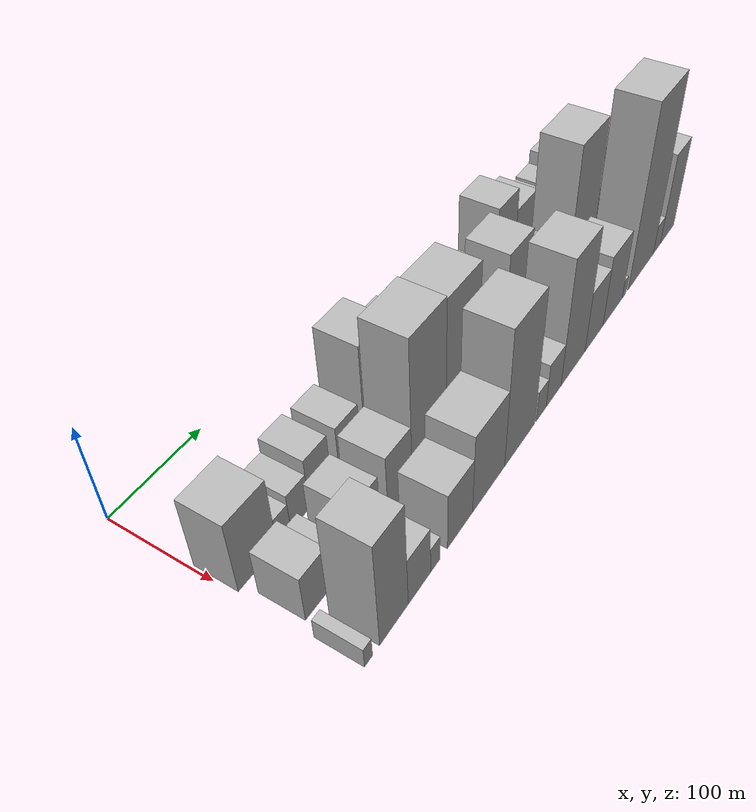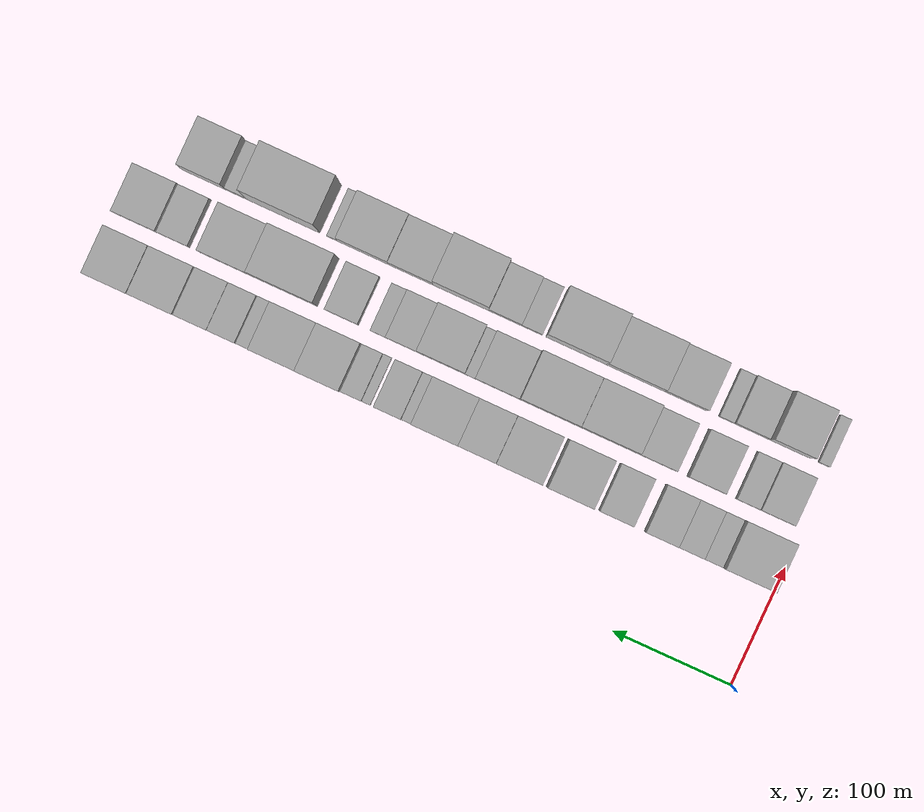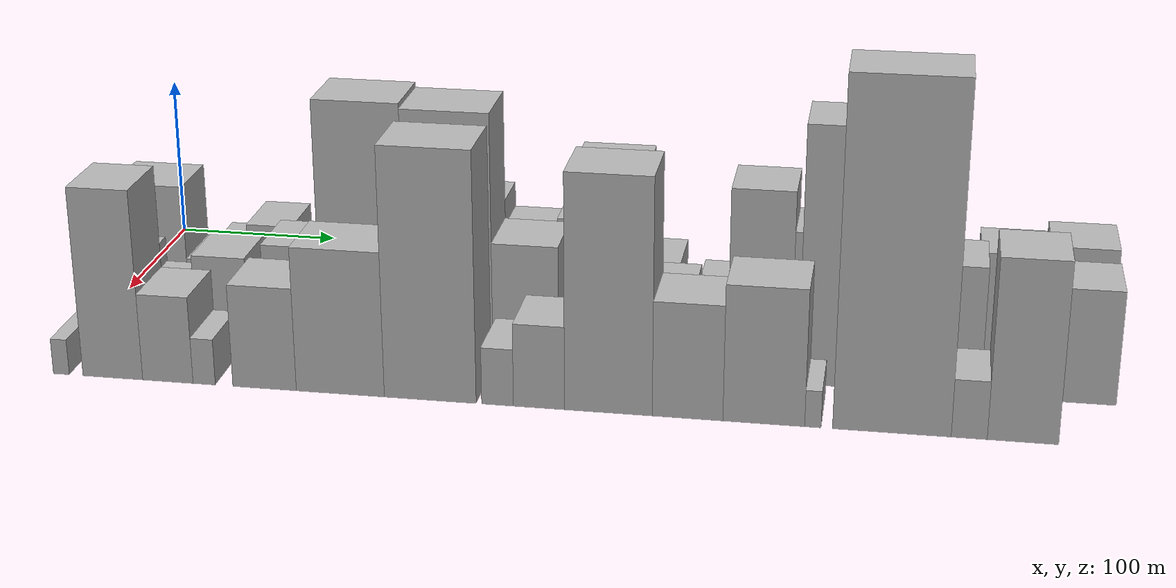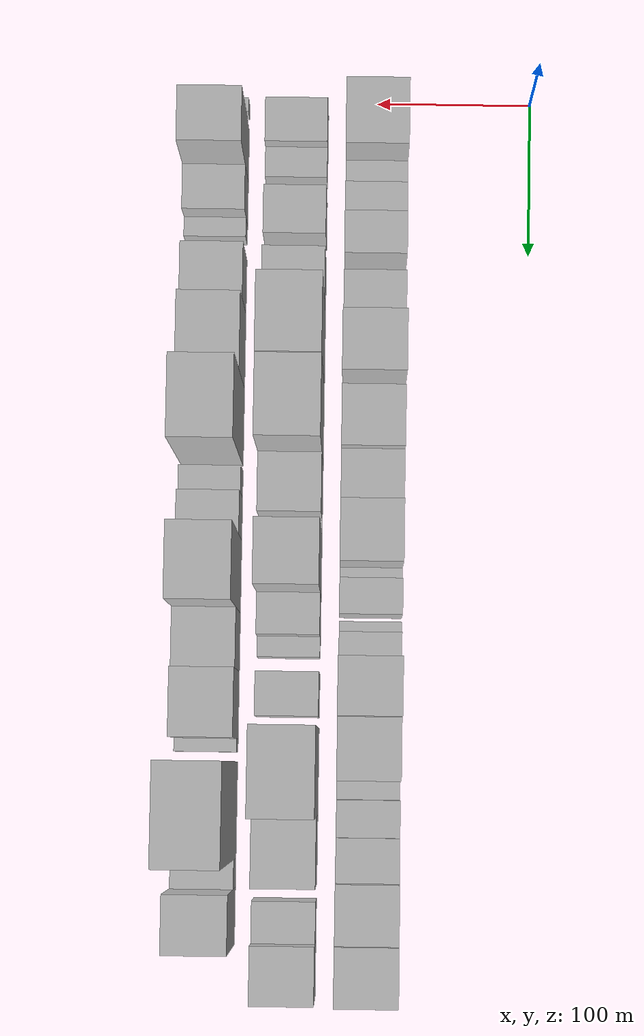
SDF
<sdf version="1.6">
 <world name="default">
  <model name="building_18">
   <static>1</static>
   <pose>100.0000 23.6500 0 0.000000 0.000000 0.000000</pose>
   <link name="link">
    <pose>0 0 37.50 0 0 0</pose>
    <collision name="collision"><geometry><box><size>40.0000 42.3919 75.0000</size></box></geometry></collision>
    <visual name="visual">
     <cast_shadows>0</cast_shadows>
     <geometry><box><size>40.0000 42.3919 75.0000</size></box></geometry>
     <material>
      <script>
       <uri>model://HANNAS_wall/materials/scripts</uri>
       <uri>model://HANNAS_wall/materials/textures</uri>
       <name>vrc/HANNAS_wall</name>
      </script>
     </material>
    </visual>
   </link>
  </model>
  <model name="building_19">
   <static>1</static>
   <pose>100.0000 52.8232 0 0.000000 0.000000 0.000000</pose>
   <link name="link">
    <pose>0 0 15.00 0 0 0</pose>
    <collision name="collision"><geometry><box><size>40.0000 15.9544 30.0000</size></box></geometry></collision>
    <visual name="visual">
     <cast_shadows>0</cast_shadows>
     <geometry><box><size>40.0000 15.9544 30.0000</size></box></geometry>
     <material>
      <script>
       <uri>model://HANNAS_wall/materials/scripts</uri>
       <uri>model://HANNAS_wall/materials/textures</uri>
       <name>vrc/HANNAS_wall</name>
      </script>
     </material>
    </visual>
   </link>
  </model>
  <model name="building_20">
   <static>1</static>
   <pose>100.0000 71.8989 0 0.000000 0.000000 0.000000</pose>
   <link name="link">
    <pose>0 0 19.50 0 0 0</pose>
    <collision name="collision"><geometry><box><size>40.0000 22.1970 39.0000</size></box></geometry></collision>
    <visual name="visual">
     <cast_shadows>0</cast_shadows>
     <geometry><box><size>40.0000 22.1970 39.0000</size></box></geometry>
     <material>
      <script>
       <uri>model://HANNAS_wall/materials/scripts</uri>
       <uri>model://HANNAS_wall/materials/textures</uri>
       <name>vrc/HANNAS_wall</name>
      </script>
     </material>
    </visual>
   </link>
  </model>
  <model name="building_21">
   <static>1</static>
   <pose>100.0000 96.7410 0 0.000000 0.000000 0.000000</pose>
   <link name="link">
    <pose>0 0 27.00 0 0 0</pose>
    <collision name="collision"><geometry><box><size>40.0000 27.4872 54.0000</size></box></geometry></collision>
    <visual name="visual">
     <cast_shadows>0</cast_shadows>
     <geometry><box><size>40.0000 27.4872 54.0000</size></box></geometry>
     <material>
      <script>
       <uri>model://HANNAS_wall/materials/scripts</uri>
       <uri>model://HANNAS_wall/materials/textures</uri>
       <name>vrc/HANNAS_wall</name>
      </script>
     </material>
    </visual>
   </link>
  </model>
  <model name="building_22">
   <static>1</static>
   <pose>100.0000 134.7807 0 0.000000 0.000000 0.000000</pose>
   <link name="link">
    <pose>0 0 25.50 0 0 0</pose>
    <collision name="collision"><geometry><box><size>40.0000 28.5921 51.0000</size></box></geometry></collision>
    <visual name="visual">
     <cast_shadows>0</cast_shadows>
     <geometry><box><size>40.0000 28.5921 51.0000</size></box></geometry>
     <material>
      <script>
       <uri>model://HANNAS_wall/materials/scripts</uri>
       <uri>model://HANNAS_wall/materials/textures</uri>
       <name>vrc/HANNAS_wall</name>
      </script>
     </material>
    </visual>
   </link>
  </model>
  <model name="building_23">
   <static>1</static>
   <pose>100.0000 174.2291 0 0.000000 0.000000 0.000000</pose>
   <link name="link">
    <pose>0 0 52.50 0 0 0</pose>
    <collision name="collision"><geometry><box><size>40.0000 38.3047 105.0000</size></box></geometry></collision>
    <visual name="visual">
     <cast_shadows>0</cast_shadows>
     <geometry><box><size>40.0000 38.3047 105.0000</size></box></geometry>
     <material>
      <script>
       <uri>model://HANNAS_wall/materials/scripts</uri>
       <uri>model://HANNAS_wall/materials/textures</uri>
       <name>vrc/HANNAS_wall</name>
      </script>
     </material>
    </visual>
   </link>
  </model>
  <model name="building_24">
   <static>1</static>
   <pose>100.0000 216.7153 0 0.000000 0.000000 0.000000</pose>
   <link name="link">
    <pose>0 0 37.50 0 0 0</pose>
    <collision name="collision"><geometry><box><size>40.0000 38.6677 75.0000</size></box></geometry></collision>
    <visual name="visual">
     <cast_shadows>0</cast_shadows>
     <geometry><box><size>40.0000 38.6677 75.0000</size></box></geometry>
     <material>
      <script>
       <uri>model://HANNAS_wall/materials/scripts</uri>
       <uri>model://HANNAS_wall/materials/textures</uri>
       <name>vrc/HANNAS_wall</name>
      </script>
     </material>
    </visual>
   </link>
  </model>
  <model name="building_25">
   <static>1</static>
   <pose>100.0000 252.0705 0 0.000000 0.000000 0.000000</pose>
   <link name="link">
    <pose>0 0 30.00 0 0 0</pose>
    <collision name="collision"><geometry><box><size>40.0000 32.0428 60.0000</size></box></geometry></collision>
    <visual name="visual">
     <cast_shadows>0</cast_shadows>
     <geometry><box><size>40.0000 32.0428 60.0000</size></box></geometry>
     <material>
      <script>
       <uri>model://HANNAS_wall/materials/scripts</uri>
       <uri>model://HANNAS_wall/materials/textures</uri>
       <name>vrc/HANNAS_wall</name>
      </script>
     </material>
    </visual>
   </link>
  </model>
  <model name="building_26">
   <static>1</static>
   <pose>100.0000 287.7760 0 0.000000 0.000000 0.000000</pose>
   <link name="link">
    <pose>0 0 34.50 0 0 0</pose>
    <collision name="collision"><geometry><box><size>40.0000 39.3682 69.0000</size></box></geometry></collision>
    <visual name="visual">
     <cast_shadows>0</cast_shadows>
     <geometry><box><size>40.0000 39.3682 69.0000</size></box></geometry>
     <material>
      <script>
       <uri>model://HANNAS_wall/materials/scripts</uri>
       <uri>model://HANNAS_wall/materials/textures</uri>
       <name>vrc/HANNAS_wall</name>
      </script>
     </material>
    </visual>
   </link>
  </model>
  <model name="building_27">
   <static>1</static>
   <pose>100.0000 311.7045 0 0.000000 0.000000 0.000000</pose>
   <link name="link">
    <pose>0 0 9.00 0 0 0</pose>
    <collision name="collision"><geometry><box><size>40.0000 8.4889 18.0000</size></box></geometry></collision>
    <visual name="visual">
     <cast_shadows>0</cast_shadows>
     <geometry><box><size>40.0000 8.4889 18.0000</size></box></geometry>
     <material>
      <script>
       <uri>model://HANNAS_wall/materials/scripts</uri>
       <uri>model://HANNAS_wall/materials/textures</uri>
       <name>vrc/HANNAS_wall</name>
      </script>
     </material>
    </visual>
   </link>
  </model>
  <model name="building_28">
   <static>1</static>
   <pose>100.0000 327.4721 0 0.000000 0.000000 0.000000</pose>
   <link name="link">
    <pose>0 0 22.50 0 0 0</pose>
    <collision name="collision"><geometry><box><size>40.0000 23.0463 45.0000</size></box></geometry></collision>
    <visual name="visual">
     <cast_shadows>0</cast_shadows>
     <geometry><box><size>40.0000 23.0463 45.0000</size></box></geometry>
     <material>
      <script>
       <uri>model://HANNAS_wall/materials/scripts</uri>
       <uri>model://HANNAS_wall/materials/textures</uri>
       <name>vrc/HANNAS_wall</name>
      </script>
     </material>
    </visual>
   </link>
  </model>
  <model name="building_29">
   <static>1</static>
   <pose>100.0000 345.7176 0 0.000000 0.000000 0.000000</pose>
   <link name="link">
    <pose>0 0 7.50 0 0 0</pose>
    <collision name="collision"><geometry><box><size>40.0000 7.4447 15.0000</size></box></geometry></collision>
    <visual name="visual">
     <cast_shadows>0</cast_shadows>
     <geometry><box><size>40.0000 7.4447 15.0000</size></box></geometry>
     <material>
      <script>
       <uri>model://HANNAS_wall/materials/scripts</uri>
       <uri>model://HANNAS_wall/materials/textures</uri>
       <name>vrc/HANNAS_wall</name>
      </script>
     </material>
    </visual>
   </link>
  </model>
  <model name="building_30">
   <static>1</static>
   <pose>100.0000 358.3131 0 0.000000 0.000000 0.000000</pose>
   <link name="link">
    <pose>0 0 16.50 0 0 0</pose>
    <collision name="collision"><geometry><box><size>40.0000 17.7463 33.0000</size></box></geometry></collision>
    <visual name="visual">
     <cast_shadows>0</cast_shadows>
     <geometry><box><size>40.0000 17.7463 33.0000</size></box></geometry>
     <material>
      <script>
       <uri>model://HANNAS_wall/materials/scripts</uri>
       <uri>model://HANNAS_wall/materials/textures</uri>
       <name>vrc/HANNAS_wall</name>
      </script>
     </material>
    </visual>
   </link>
  </model>
  <model name="building_31">
   <static>1</static>
   <pose>100.0000 385.5132 0 0.000000 0.000000 0.000000</pose>
   <link name="link">
    <pose>0 0 46.50 0 0 0</pose>
    <collision name="collision"><geometry><box><size>40.0000 36.6539 93.0000</size></box></geometry></collision>
    <visual name="visual">
     <cast_shadows>0</cast_shadows>
     <geometry><box><size>40.0000 36.6539 93.0000</size></box></geometry>
     <material>
      <script>
       <uri>model://HANNAS_wall/materials/scripts</uri>
       <uri>model://HANNAS_wall/materials/textures</uri>
       <name>vrc/HANNAS_wall</name>
      </script>
     </material>
    </visual>
   </link>
  </model>
  <model name="building_32">
   <static>1</static>
   <pose>100.0000 423.6090 0 0.000000 0.000000 0.000000</pose>
   <link name="link">
    <pose>0 0 34.50 0 0 0</pose>
    <collision name="collision"><geometry><box><size>40.0000 39.5377 69.0000</size></box></geometry></collision>
    <visual name="visual">
     <cast_shadows>0</cast_shadows>
     <geometry><box><size>40.0000 39.5377 69.0000</size></box></geometry>
     <material>
      <script>
       <uri>model://HANNAS_wall/materials/scripts</uri>
       <uri>model://HANNAS_wall/materials/textures</uri>
       <name>vrc/HANNAS_wall</name>
      </script>
     </material>
    </visual>
   </link>
  </model>
  <model name="building_33">
   <static>1</static>
   <pose>100.0000 449.3270 0 0.000000 0.000000 0.000000</pose>
   <link name="link">
    <pose>0 0 13.50 0 0 0</pose>
    <collision name="collision"><geometry><box><size>40.0000 11.8984 27.0000</size></box></geometry></collision>
    <visual name="visual">
     <cast_shadows>0</cast_shadows>
     <geometry><box><size>40.0000 11.8984 27.0000</size></box></geometry>
     <material>
      <script>
       <uri>model://HANNAS_wall/materials/scripts</uri>
       <uri>model://HANNAS_wall/materials/textures</uri>
       <name>vrc/HANNAS_wall</name>
      </script>
     </material>
    </visual>
   </link>
  </model>
  <model name="building_34">
   <static>1</static>
   <pose>100.0000 467.0291 0 0.000000 0.000000 0.000000</pose>
   <link name="link">
    <pose>0 0 22.50 0 0 0</pose>
    <collision name="collision"><geometry><box><size>40.0000 23.5057 45.0000</size></box></geometry></collision>
    <visual name="visual">
     <cast_shadows>0</cast_shadows>
     <geometry><box><size>40.0000 23.5057 45.0000</size></box></geometry>
     <material>
      <script>
       <uri>model://HANNAS_wall/materials/scripts</uri>
       <uri>model://HANNAS_wall/materials/textures</uri>
       <name>vrc/HANNAS_wall</name>
      </script>
     </material>
    </visual>
   </link>
  </model>
  <model name="building_35">
   <static>1</static>
   <pose>100.0000 492.8434 0 0.000000 0.000000 0.000000</pose>
   <link name="link">
    <pose>0 0 24.00 0 0 0</pose>
    <collision name="collision"><geometry><box><size>40.0000 28.1228 48.0000</size></box></geometry></collision>
    <visual name="visual">
     <cast_shadows>0</cast_shadows>
     <geometry><box><size>40.0000 28.1228 48.0000</size></box></geometry>
     <material>
      <script>
       <uri>model://HANNAS_wall/materials/scripts</uri>
       <uri>model://HANNAS_wall/materials/textures</uri>
       <name>vrc/HANNAS_wall</name>
      </script>
     </material>
    </visual>
   </link>
  </model>
  <model name="building_36">
   <static>1</static>
   <pose>100.0000 525.7627 0 0.000000 0.000000 0.000000</pose>
   <link name="link">
    <pose>0 0 31.50 0 0 0</pose>
    <collision name="collision"><geometry><box><size>40.0000 37.7156 63.0000</size></box></geometry></collision>
    <visual name="visual">
     <cast_shadows>0</cast_shadows>
     <geometry><box><size>40.0000 37.7156 63.0000</size></box></geometry>
     <material>
      <script>
       <uri>model://HANNAS_wall/materials/scripts</uri>
       <uri>model://HANNAS_wall/materials/textures</uri>
       <name>vrc/HANNAS_wall</name>
      </script>
     </material>
    </visual>
   </link>
  </model>
  <model name="building_37">
   <static>1</static>
   <pose>100.0000 563.3392 0 0.000000 0.000000 0.000000</pose>
   <link name="link">
    <pose>0 0 34.50 0 0 0</pose>
    <collision name="collision"><geometry><box><size>40.0000 37.4375 69.0000</size></box></geometry></collision>
    <visual name="visual">
     <cast_shadows>0</cast_shadows>
     <geometry><box><size>40.0000 37.4375 69.0000</size></box></geometry>
     <material>
      <script>
       <uri>model://HANNAS_wall/materials/scripts</uri>
       <uri>model://HANNAS_wall/materials/textures</uri>
       <name>vrc/HANNAS_wall</name>
      </script>
     </material>
    </visual>
   </link>
  </model>
  <model name="building_55">
   <static>1</static>
   <pose>152.0000 23.2132 0 0.000000 0.000000 0.000000</pose>
   <link name="link">
    <pose>0 0 24.00 0 0 0</pose>
    <collision name="collision"><geometry><box><size>40.0000 28.6717 48.0000</size></box></geometry></collision>
    <visual name="visual">
     <cast_shadows>0</cast_shadows>
     <geometry><box><size>40.0000 28.6717 48.0000</size></box></geometry>
     <material>
      <script>
       <uri>model://HANNAS_wall/materials/scripts</uri>
       <uri>model://HANNAS_wall/materials/textures</uri>
       <name>vrc/HANNAS_wall</name>
      </script>
     </material>
    </visual>
   </link>
  </model>
  <model name="building_56">
   <static>1</static>
   <pose>152.0000 47.3883 0 0.000000 0.000000 0.000000</pose>
   <link name="link">
    <pose>0 0 16.50 0 0 0</pose>
    <collision name="collision"><geometry><box><size>40.0000 19.6784 33.0000</size></box></geometry></collision>
    <visual name="visual">
     <cast_shadows>0</cast_shadows>
     <geometry><box><size>40.0000 19.6784 33.0000</size></box></geometry>
     <material>
      <script>
       <uri>model://HANNAS_wall/materials/scripts</uri>
       <uri>model://HANNAS_wall/materials/textures</uri>
       <name>vrc/HANNAS_wall</name>
      </script>
     </material>
    </visual>
   </link>
  </model>
  <model name="building_57">
   <static>1</static>
   <pose>152.0000 82.7810 0 0.000000 0.000000 0.000000</pose>
   <link name="link">
    <pose>0 0 27.00 0 0 0</pose>
    <collision name="collision"><geometry><box><size>40.0000 31.1070 54.0000</size></box></geometry></collision>
    <visual name="visual">
     <cast_shadows>0</cast_shadows>
     <geometry><box><size>40.0000 31.1070 54.0000</size></box></geometry>
     <material>
      <script>
       <uri>model://HANNAS_wall/materials/scripts</uri>
       <uri>model://HANNAS_wall/materials/textures</uri>
       <name>vrc/HANNAS_wall</name>
      </script>
     </material>
    </visual>
   </link>
  </model>
  <model name="building_58">
   <static>1</static>
   <pose>152.0000 124.8643 0 0.000000 0.000000 0.000000</pose>
   <link name="link">
    <pose>0 0 31.50 0 0 0</pose>
    <collision name="collision"><geometry><box><size>40.0000 33.0595 63.0000</size></box></geometry></collision>
    <visual name="visual">
     <cast_shadows>0</cast_shadows>
     <geometry><box><size>40.0000 33.0595 63.0000</size></box></geometry>
     <material>
      <script>
       <uri>model://HANNAS_wall/materials/scripts</uri>
       <uri>model://HANNAS_wall/materials/textures</uri>
       <name>vrc/HANNAS_wall</name>
      </script>
     </material>
    </visual>
   </link>
  </model>
  <model name="building_59">
   <static>1</static>
   <pose>152.0000 165.9529 0 0.000000 0.000000 0.000000</pose>
   <link name="link">
    <pose>0 0 75.00 0 0 0</pose>
    <collision name="collision"><geometry><box><size>40.0000 49.1177 150.0000</size></box></geometry></collision>
    <visual name="visual">
     <cast_shadows>0</cast_shadows>
     <geometry><box><size>40.0000 49.1177 150.0000</size></box></geometry>
     <material>
      <script>
       <uri>model://HANNAS_wall/materials/scripts</uri>
       <uri>model://HANNAS_wall/materials/textures</uri>
       <name>vrc/HANNAS_wall</name>
      </script>
     </material>
    </visual>
   </link>
  </model>
  <model name="building_60">
   <static>1</static>
   <pose>152.0000 215.3780 0 0.000000 0.000000 0.000000</pose>
   <link name="link">
    <pose>0 0 73.50 0 0 0</pose>
    <collision name="collision"><geometry><box><size>40.0000 49.7326 147.0000</size></box></geometry></collision>
    <visual name="visual">
     <cast_shadows>0</cast_shadows>
     <geometry><box><size>40.0000 49.7326 147.0000</size></box></geometry>
     <material>
      <script>
       <uri>model://HANNAS_wall/materials/scripts</uri>
       <uri>model://HANNAS_wall/materials/textures</uri>
       <name>vrc/HANNAS_wall</name>
      </script>
     </material>
    </visual>
   </link>
  </model>
  <model name="building_61">
   <static>1</static>
   <pose>152.0000 258.8604 0 0.000000 0.000000 0.000000</pose>
   <link name="link">
    <pose>0 0 36.00 0 0 0</pose>
    <collision name="collision"><geometry><box><size>40.0000 37.2323 72.0000</size></box></geometry></collision>
    <visual name="visual">
     <cast_shadows>0</cast_shadows>
     <geometry><box><size>40.0000 37.2323 72.0000</size></box></geometry>
     <material>
      <script>
       <uri>model://HANNAS_wall/materials/scripts</uri>
       <uri>model://HANNAS_wall/materials/textures</uri>
       <name>vrc/HANNAS_wall</name>
      </script>
     </material>
    </visual>
   </link>
  </model>
  <model name="building_62">
   <static>1</static>
   <pose>152.0000 281.7006 0 0.000000 0.000000 0.000000</pose>
   <link name="link">
    <pose>0 0 9.00 0 0 0</pose>
    <collision name="collision"><geometry><box><size>40.0000 8.4481 18.0000</size></box></geometry></collision>
    <visual name="visual">
     <cast_shadows>0</cast_shadows>
     <geometry><box><size>40.0000 8.4481 18.0000</size></box></geometry>
     <material>
      <script>
       <uri>model://HANNAS_wall/materials/scripts</uri>
       <uri>model://HANNAS_wall/materials/textures</uri>
       <name>vrc/HANNAS_wall</name>
      </script>
     </material>
    </visual>
   </link>
  </model>
  <model name="building_63">
   <static>1</static>
   <pose>152.0000 306.0871 0 0.000000 0.000000 0.000000</pose>
   <link name="link">
    <pose>0 0 60.00 0 0 0</pose>
    <collision name="collision"><geometry><box><size>40.0000 40.3248 120.0000</size></box></geometry></collision>
    <visual name="visual">
     <cast_shadows>0</cast_shadows>
     <geometry><box><size>40.0000 40.3248 120.0000</size></box></geometry>
     <material>
      <script>
       <uri>model://HANNAS_wall/materials/scripts</uri>
       <uri>model://HANNAS_wall/materials/textures</uri>
       <name>vrc/HANNAS_wall</name>
      </script>
     </material>
    </visual>
   </link>
  </model>
  <model name="building_64">
   <static>1</static>
   <pose>152.0000 339.4854 0 0.000000 0.000000 0.000000</pose>
   <link name="link">
    <pose>0 0 25.50 0 0 0</pose>
    <collision name="collision"><geometry><box><size>40.0000 26.4720 51.0000</size></box></geometry></collision>
    <visual name="visual">
     <cast_shadows>0</cast_shadows>
     <geometry><box><size>40.0000 26.4720 51.0000</size></box></geometry>
     <material>
      <script>
       <uri>model://HANNAS_wall/materials/scripts</uri>
       <uri>model://HANNAS_wall/materials/textures</uri>
       <name>vrc/HANNAS_wall</name>
      </script>
     </material>
    </visual>
   </link>
  </model>
  <model name="building_65">
   <static>1</static>
   <pose>152.0000 359.3224 0 0.000000 0.000000 0.000000</pose>
   <link name="link">
    <pose>0 0 13.50 0 0 0</pose>
    <collision name="collision"><geometry><box><size>40.0000 13.2019 27.0000</size></box></geometry></collision>
    <visual name="visual">
     <cast_shadows>0</cast_shadows>
     <geometry><box><size>40.0000 13.2019 27.0000</size></box></geometry>
     <material>
      <script>
       <uri>model://HANNAS_wall/materials/scripts</uri>
       <uri>model://HANNAS_wall/materials/textures</uri>
       <name>vrc/HANNAS_wall</name>
      </script>
     </material>
    </visual>
   </link>
  </model>
  <model name="building_66">
   <static>1</static>
   <pose>152.0000 389.8342 0 0.000000 0.000000 0.000000</pose>
   <link name="link">
    <pose>0 0 27.00 0 0 0</pose>
    <collision name="collision"><geometry><box><size>40.0000 27.8216 54.0000</size></box></geometry></collision>
    <visual name="visual">
     <cast_shadows>0</cast_shadows>
     <geometry><box><size>40.0000 27.8216 54.0000</size></box></geometry>
     <material>
      <script>
       <uri>model://HANNAS_wall/materials/scripts</uri>
       <uri>model://HANNAS_wall/materials/textures</uri>
       <name>vrc/HANNAS_wall</name>
      </script>
     </material>
    </visual>
   </link>
  </model>
  <model name="building_67">
   <static>1</static>
   <pose>152.0000 438.2708 0 0.000000 0.000000 0.000000</pose>
   <link name="link">
    <pose>0 0 75.00 0 0 0</pose>
    <collision name="collision"><geometry><box><size>40.0000 55.0516 150.0000</size></box></geometry></collision>
    <visual name="visual">
     <cast_shadows>0</cast_shadows>
     <geometry><box><size>40.0000 55.0516 150.0000</size></box></geometry>
     <material>
      <script>
       <uri>model://HANNAS_wall/materials/scripts</uri>
       <uri>model://HANNAS_wall/materials/textures</uri>
       <name>vrc/HANNAS_wall</name>
      </script>
     </material>
    </visual>
   </link>
  </model>
  <model name="building_68">
   <static>1</static>
   <pose>152.0000 487.7470 0 0.000000 0.000000 0.000000</pose>
   <link name="link">
    <pose>0 0 37.50 0 0 0</pose>
    <collision name="collision"><geometry><box><size>40.0000 43.9009 75.0000</size></box></geometry></collision>
    <visual name="visual">
     <cast_shadows>0</cast_shadows>
     <geometry><box><size>40.0000 43.9009 75.0000</size></box></geometry>
     <material>
      <script>
       <uri>model://HANNAS_wall/materials/scripts</uri>
       <uri>model://HANNAS_wall/materials/textures</uri>
       <name>vrc/HANNAS_wall</name>
      </script>
     </material>
    </visual>
   </link>
  </model>
  <model name="building_69">
   <static>1</static>
   <pose>152.0000 531.7725 0 0.000000 0.000000 0.000000</pose>
   <link name="link">
    <pose>0 0 22.50 0 0 0</pose>
    <collision name="collision"><geometry><box><size>40.0000 26.1501 45.0000</size></box></geometry></collision>
    <visual name="visual">
     <cast_shadows>0</cast_shadows>
     <geometry><box><size>40.0000 26.1501 45.0000</size></box></geometry>
     <material>
      <script>
       <uri>model://HANNAS_wall/materials/scripts</uri>
       <uri>model://HANNAS_wall/materials/textures</uri>
       <name>vrc/HANNAS_wall</name>
      </script>
     </material>
    </visual>
   </link>
  </model>
  <model name="building_70">
   <static>1</static>
   <pose>152.0000 563.1660 0 0.000000 0.000000 0.000000</pose>
   <link name="link">
    <pose>0 0 33.00 0 0 0</pose>
    <collision name="collision"><geometry><box><size>40.0000 36.6369 66.0000</size></box></geometry></collision>
    <visual name="visual">
     <cast_shadows>0</cast_shadows>
     <geometry><box><size>40.0000 36.6369 66.0000</size></box></geometry>
     <material>
      <script>
       <uri>model://HANNAS_wall/materials/scripts</uri>
       <uri>model://HANNAS_wall/materials/textures</uri>
       <name>vrc/HANNAS_wall</name>
      </script>
     </material>
    </visual>
   </link>
  </model>
  <model name="building_88">
   <static>1</static>
   <pose>204.0000 6.7060 0 0.000000 0.000000 0.000000</pose>
   <link name="link">
    <pose>0 0 10.50 0 0 0</pose>
    <collision name="collision"><geometry><box><size>40.0000 9.2147 21.0000</size></box></geometry></collision>
    <visual name="visual">
     <cast_shadows>0</cast_shadows>
     <geometry><box><size>40.0000 9.2147 21.0000</size></box></geometry>
     <material>
      <script>
       <uri>model://HANNAS_wall/materials/scripts</uri>
       <uri>model://HANNAS_wall/materials/textures</uri>
       <name>vrc/HANNAS_wall</name>
      </script>
     </material>
    </visual>
   </link>
  </model>
  <model name="building_89">
   <static>1</static>
   <pose>204.0000 36.6101 0 0.000000 0.000000 0.000000</pose>
   <link name="link">
    <pose>0 0 55.50 0 0 0</pose>
    <collision name="collision"><geometry><box><size>40.0000 34.5934 111.0000</size></box></geometry></collision>
    <visual name="visual">
     <cast_shadows>0</cast_shadows>
     <geometry><box><size>40.0000 34.5934 111.0000</size></box></geometry>
     <material>
      <script>
       <uri>model://HANNAS_wall/materials/scripts</uri>
       <uri>model://HANNAS_wall/materials/textures</uri>
       <name>vrc/HANNAS_wall</name>
      </script>
     </material>
    </visual>
   </link>
  </model>
  <model name="building_90">
   <static>1</static>
   <pose>204.0000 68.3598 0 0.000000 0.000000 0.000000</pose>
   <link name="link">
    <pose>0 0 25.50 0 0 0</pose>
    <collision name="collision"><geometry><box><size>40.0000 28.9062 51.0000</size></box></geometry></collision>
    <visual name="visual">
     <cast_shadows>0</cast_shadows>
     <geometry><box><size>40.0000 28.9062 51.0000</size></box></geometry>
     <material>
      <script>
       <uri>model://HANNAS_wall/materials/scripts</uri>
       <uri>model://HANNAS_wall/materials/textures</uri>
       <name>vrc/HANNAS_wall</name>
      </script>
     </material>
    </visual>
   </link>
  </model>
  <model name="building_91">
   <static>1</static>
   <pose>204.0000 89.1695 0 0.000000 0.000000 0.000000</pose>
   <link name="link">
    <pose>0 0 13.50 0 0 0</pose>
    <collision name="collision"><geometry><box><size>40.0000 12.7132 27.0000</size></box></geometry></collision>
    <visual name="visual">
     <cast_shadows>0</cast_shadows>
     <geometry><box><size>40.0000 12.7132 27.0000</size></box></geometry>
     <material>
      <script>
       <uri>model://HANNAS_wall/materials/scripts</uri>
       <uri>model://HANNAS_wall/materials/textures</uri>
       <name>vrc/HANNAS_wall</name>
      </script>
     </material>
    </visual>
   </link>
  </model>
  <model name="building_92">
   <static>1</static>
   <pose>204.0000 123.4909 0 0.000000 0.000000 0.000000</pose>
   <link name="link">
    <pose>0 0 30.00 0 0 0</pose>
    <collision name="collision"><geometry><box><size>40.0000 35.9295 60.0000</size></box></geometry></collision>
    <visual name="visual">
     <cast_shadows>0</cast_shadows>
     <geometry><box><size>40.0000 35.9295 60.0000</size></box></geometry>
     <material>
      <script>
       <uri>model://HANNAS_wall/materials/scripts</uri>
       <uri>model://HANNAS_wall/materials/textures</uri>
       <name>vrc/HANNAS_wall</name>
      </script>
     </material>
    </visual>
   </link>
  </model>
  <model name="building_93">
   <static>1</static>
   <pose>204.0000 166.1079 0 0.000000 0.000000 0.000000</pose>
   <link name="link">
    <pose>0 0 42.00 0 0 0</pose>
    <collision name="collision"><geometry><box><size>40.0000 49.3047 84.0000</size></box></geometry></collision>
    <visual name="visual">
     <cast_shadows>0</cast_shadows>
     <geometry><box><size>40.0000 49.3047 84.0000</size></box></geometry>
     <material>
      <script>
       <uri>model://HANNAS_wall/materials/scripts</uri>
       <uri>model://HANNAS_wall/materials/textures</uri>
       <name>vrc/HANNAS_wall</name>
      </script>
     </material>
    </visual>
   </link>
  </model>
  <model name="building_94">
   <static>1</static>
   <pose>204.0000 216.1677 0 0.000000 0.000000 0.000000</pose>
   <link name="link">
    <pose>0 0 72.00 0 0 0</pose>
    <collision name="collision"><geometry><box><size>40.0000 50.8148 144.0000</size></box></geometry></collision>
    <visual name="visual">
     <cast_shadows>0</cast_shadows>
     <geometry><box><size>40.0000 50.8148 144.0000</size></box></geometry>
     <material>
      <script>
       <uri>model://HANNAS_wall/materials/scripts</uri>
       <uri>model://HANNAS_wall/materials/textures</uri>
       <name>vrc/HANNAS_wall</name>
      </script>
     </material>
    </visual>
   </link>
  </model>
  <model name="building_95">
   <static>1</static>
   <pose>204.0000 253.2623 0 0.000000 0.000000 0.000000</pose>
   <link name="link">
    <pose>0 0 16.50 0 0 0</pose>
    <collision name="collision"><geometry><box><size>40.0000 17.3746 33.0000</size></box></geometry></collision>
    <visual name="visual">
     <cast_shadows>0</cast_shadows>
     <geometry><box><size>40.0000 17.3746 33.0000</size></box></geometry>
     <material>
      <script>
       <uri>model://HANNAS_wall/materials/scripts</uri>
       <uri>model://HANNAS_wall/materials/textures</uri>
       <name>vrc/HANNAS_wall</name>
      </script>
     </material>
    </visual>
   </link>
  </model>
  <model name="building_96">
   <static>1</static>
   <pose>204.0000 275.8494 0 0.000000 0.000000 0.000000</pose>
   <link name="link">
    <pose>0 0 24.00 0 0 0</pose>
    <collision name="collision"><geometry><box><size>40.0000 27.7996 48.0000</size></box></geometry></collision>
    <visual name="visual">
     <cast_shadows>0</cast_shadows>
     <geometry><box><size>40.0000 27.7996 48.0000</size></box></geometry>
     <material>
      <script>
       <uri>model://HANNAS_wall/materials/scripts</uri>
       <uri>model://HANNAS_wall/materials/textures</uri>
       <name>vrc/HANNAS_wall</name>
      </script>
     </material>
    </visual>
   </link>
  </model>
  <model name="building_97">
   <static>1</static>
   <pose>204.0000 313.3836 0 0.000000 0.000000 0.000000</pose>
   <link name="link">
    <pose>0 0 67.50 0 0 0</pose>
    <collision name="collision"><geometry><box><size>40.0000 47.2688 135.0000</size></box></geometry></collision>
    <visual name="visual">
     <cast_shadows>0</cast_shadows>
     <geometry><box><size>40.0000 47.2688 135.0000</size></box></geometry>
     <material>
      <script>
       <uri>model://HANNAS_wall/materials/scripts</uri>
       <uri>model://HANNAS_wall/materials/textures</uri>
       <name>vrc/HANNAS_wall</name>
      </script>
     </material>
    </visual>
   </link>
  </model>
  <model name="building_98">
   <static>1</static>
   <pose>204.0000 355.8753 0 0.000000 0.000000 0.000000</pose>
   <link name="link">
    <pose>0 0 33.00 0 0 0</pose>
    <collision name="collision"><geometry><box><size>40.0000 37.7145 66.0000</size></box></geometry></collision>
    <visual name="visual">
     <cast_shadows>0</cast_shadows>
     <geometry><box><size>40.0000 37.7145 66.0000</size></box></geometry>
     <material>
      <script>
       <uri>model://HANNAS_wall/materials/scripts</uri>
       <uri>model://HANNAS_wall/materials/textures</uri>
       <name>vrc/HANNAS_wall</name>
      </script>
     </material>
    </visual>
   </link>
  </model>
  <model name="building_99">
   <static>1</static>
   <pose>204.0000 396.3062 0 0.000000 0.000000 0.000000</pose>
   <link name="link">
    <pose>0 0 39.00 0 0 0</pose>
    <collision name="collision"><geometry><box><size>40.0000 43.1473 78.0000</size></box></geometry></collision>
    <visual name="visual">
     <cast_shadows>0</cast_shadows>
     <geometry><box><size>40.0000 43.1473 78.0000</size></box></geometry>
     <material>
      <script>
       <uri>model://HANNAS_wall/materials/scripts</uri>
       <uri>model://HANNAS_wall/materials/textures</uri>
       <name>vrc/HANNAS_wall</name>
      </script>
     </material>
    </visual>
   </link>
  </model>
  <model name="building_100">
   <static>1</static>
   <pose>204.0000 422.1799 0 0.000000 0.000000 0.000000</pose>
   <link name="link">
    <pose>0 0 10.50 0 0 0</pose>
    <collision name="collision"><geometry><box><size>40.0000 8.6000 21.0000</size></box></geometry></collision>
    <visual name="visual">
     <cast_shadows>0</cast_shadows>
     <geometry><box><size>40.0000 8.6000 21.0000</size></box></geometry>
     <material>
      <script>
       <uri>model://HANNAS_wall/materials/scripts</uri>
       <uri>model://HANNAS_wall/materials/textures</uri>
       <name>vrc/HANNAS_wall</name>
      </script>
     </material>
    </visual>
   </link>
  </model>
  <model name="building_101">
   <static>1</static>
   <pose>204.0000 463.2241 0 0.000000 0.000000 0.000000</pose>
   <link name="link">
    <pose>0 0 97.50 0 0 0</pose>
    <collision name="collision"><geometry><box><size>40.0000 61.4884 195.0000</size></box></geometry></collision>
    <visual name="visual">
     <cast_shadows>0</cast_shadows>
     <geometry><box><size>40.0000 61.4884 195.0000</size></box></geometry>
     <material>
      <script>
       <uri>model://HANNAS_wall/materials/scripts</uri>
       <uri>model://HANNAS_wall/materials/textures</uri>
       <name>vrc/HANNAS_wall</name>
      </script>
     </material>
    </visual>
   </link>
  </model>
  <model name="building_102">
   <static>1</static>
   <pose>204.0000 503.2077 0 0.000000 0.000000 0.000000</pose>
   <link name="link">
    <pose>0 0 16.50 0 0 0</pose>
    <collision name="collision"><geometry><box><size>40.0000 18.4786 33.0000</size></box></geometry></collision>
    <visual name="visual">
     <cast_shadows>0</cast_shadows>
     <geometry><box><size>40.0000 18.4786 33.0000</size></box></geometry>
     <material>
      <script>
       <uri>model://HANNAS_wall/materials/scripts</uri>
       <uri>model://HANNAS_wall/materials/textures</uri>
       <name>vrc/HANNAS_wall</name>
      </script>
     </material>
    </visual>
   </link>
  </model>
  <model name="building_103">
   <static>1</static>
   <pose>204.0000 530.6317 0 0.000000 0.000000 0.000000</pose>
   <link name="link">
    <pose>0 0 51.00 0 0 0</pose>
    <collision name="collision"><geometry><box><size>40.0000 36.3694 102.0000</size></box></geometry></collision>
    <visual name="visual">
     <cast_shadows>0</cast_shadows>
     <geometry><box><size>40.0000 36.3694 102.0000</size></box></geometry>
     <material>
      <script>
       <uri>model://HANNAS_wall/materials/scripts</uri>
       <uri>model://HANNAS_wall/materials/textures</uri>
       <name>vrc/HANNAS_wall</name>
      </script>
     </material>
    </visual>
   </link>
  </model>
 </world>
</sdf>
